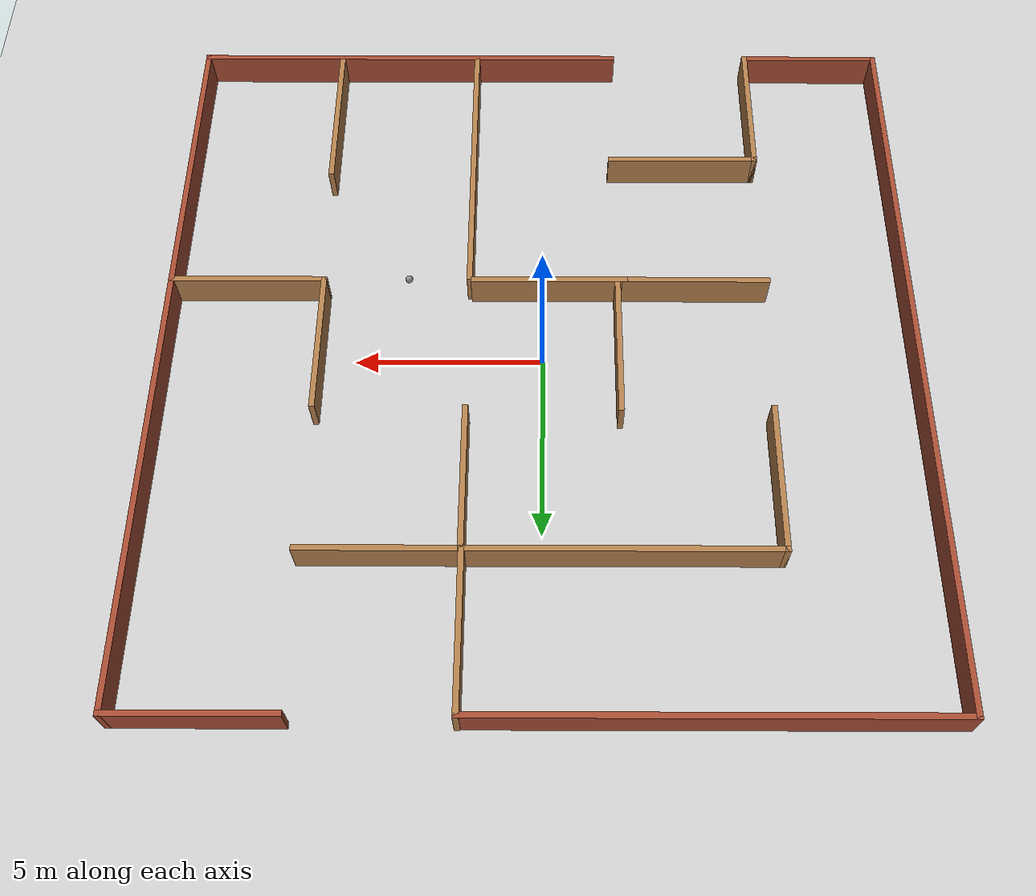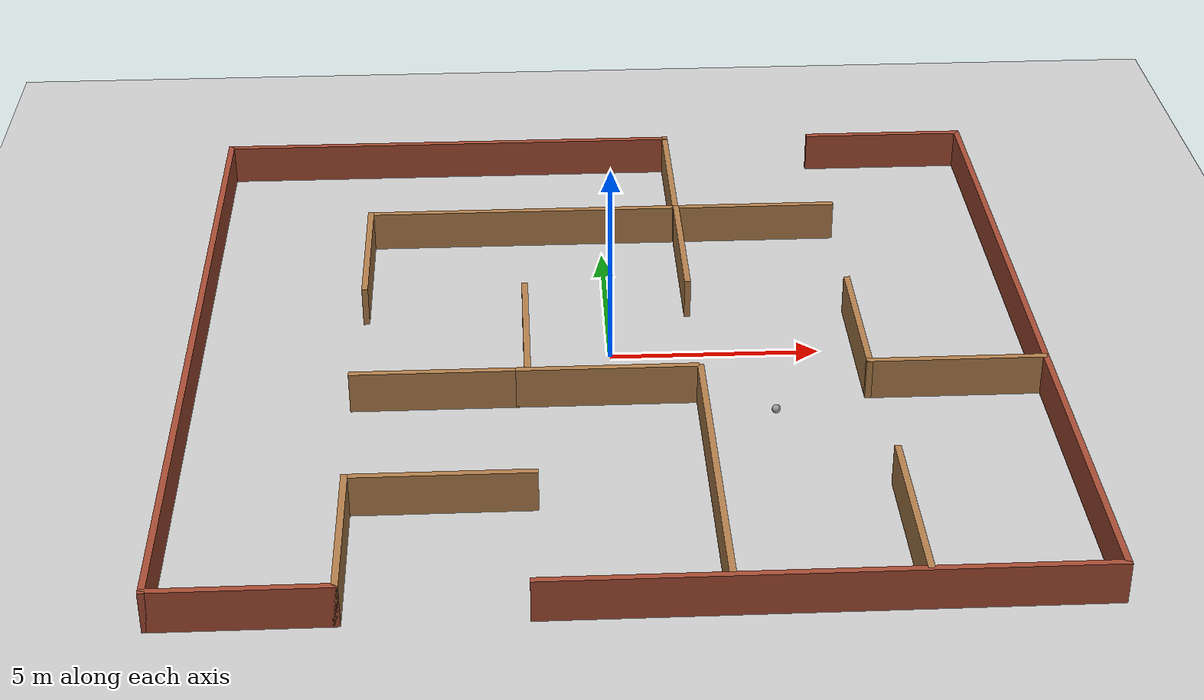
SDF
<sdf version="1.6">
 <world name="default">
  <light name="sun" type="directional">
   <pose>0 0 10 0 -0 0</pose>
   <diffuse>0.8 0.8 0.8 1</diffuse>
   <specular>0.2 0.2 0.2 1</specular>
   <attenuation>
    <range>1000</range>
    <constant>0.9</constant>
    <linear>0.01</linear>
    <quadratic>0.001</quadratic>
   </attenuation>
   <direction>-0.5 0.1 -0.9</direction>
  </light>
  <model name="ground_plane">
   <static>1</static>
   <link name="link">
    <collision name="collision">
     <geometry><plane><normal>0 0 1</normal><size>100 100</size></plane></geometry>
     <surface>
      <contact><collide_bitmask>65535</collide_bitmask></contact>
      <friction><ode><mu>100</mu><mu2>50</mu2></ode></friction>
     </surface>
    </collision>
    <visual name="visual">
     <cast_shadows>0</cast_shadows>
     <geometry><plane><normal>0 0 1</normal><size>100 100</size></plane></geometry>
     <material>
      <script><uri>file://media/materials/scripts/gazebo.material</uri><name>Gazebo/Grey</name></script>
     </material>
    </visual>
   </link>
  </model>
  <gravity>0 0 -9.8</gravity>
  <magnetic_field>6e-06 2.3e-05 -4.2e-05</magnetic_field>
  <atmosphere type="adiabatic"/>
  <physics name="default_physics" default="0" type="ode">
   <max_step_size>0.001</max_step_size>
   <real_time_factor>1</real_time_factor>
   <real_time_update_rate>1000</real_time_update_rate>
  </physics>
  <scene><ambient>0.4 0.4 0.4 1</ambient><background>0.7 0.7 0.7 1</background><shadows>1</shadows></scene>
  <audio><device>default</device></audio>
  <spherical_coordinates>
   <surface_model>EARTH_WGS84</surface_model>
   <latitude_deg>0</latitude_deg>
   <longitude_deg>0</longitude_deg>
   <elevation>0</elevation>
   <heading_deg>0</heading_deg>
  </spherical_coordinates>
  <model name="maze1">
   <pose>0.076704 -0.137319 0 0 -0 0</pose>
   <link name="Wall_100">
    <collision name="Wall_100_Collision">
     <geometry><box><size>12 0.15 1</size></box></geometry>
     <pose>0 0 0.5 0 -0 0</pose>
    </collision>
    <visual name="Wall_100_Visual">
     <pose>0 0 0.5 0 -0 0</pose>
     <geometry><box><size>12 0.15 1</size></box></geometry>
     <material>
      <script><uri>file://media/materials/scripts/gazebo.material</uri><name>Gazebo/Bricks</name></script>
      <ambient>1 1 1 1</ambient>
     </material>
     <meta><layer>0</layer></meta>
    </visual>
    <pose>-4.0495 9.9285 0 0 -0 3.14159</pose>
   </link>
   <link name="Wall_101">
    <collision name="Wall_101_Collision">
     <geometry><box><size>20 0.15 1</size></box></geometry>
     <pose>0 0 0.5 0 -0 0</pose>
    </collision>
    <visual name="Wall_101_Visual">
     <pose>0 0 0.5 0 -0 0</pose>
     <geometry><box><size>20 0.15 1</size></box></geometry>
     <material>
      <script><uri>file://media/materials/scripts/gazebo.material</uri><name>Gazebo/Bricks</name></script>
      <ambient>1 1 1 1</ambient>
     </material>
     <meta><layer>0</layer></meta>
    </visual>
    <pose>-9.9745 0.0035 0 0 -0 -1.5708</pose>
   </link>
   <link name="Wall_102">
    <collision name="Wall_102_Collision">
     <geometry><box><size>4 0.15 1</size></box></geometry>
     <pose>0 0 0.5 0 -0 0</pose>
    </collision>
    <visual name="Wall_102_Visual">
     <pose>0 0 0.5 0 -0 0</pose>
     <geometry><box><size>4 0.15 1</size></box></geometry>
     <material>
      <script><uri>file://media/materials/scripts/gazebo.material</uri><name>Gazebo/Bricks</name></script>
      <ambient>1 1 1 1</ambient>
     </material>
     <meta><layer>0</layer></meta>
    </visual>
    <pose>-8.0495 -9.9215 0 0 -0 0</pose>
   </link>
   <link name="Wall_103">
    <collision name="Wall_103_Collision">
     <geometry><box><size>4 0.15 1</size></box></geometry>
     <pose>0 0 0.5 0 -0 0</pose>
    </collision>
    <visual name="Wall_103_Visual">
     <pose>0 0 0.5 0 -0 0</pose>
     <geometry><box><size>4 0.15 1</size></box></geometry>
     <material>
      <script><uri>file://media/materials/scripts/gazebo.material</uri><name>Gazebo/Wood</name></script>
      <ambient>1 1 1 1</ambient>
     </material>
     <meta><layer>0</layer></meta>
    </visual>
    <pose>-6.1245 -7.9965 0 0 -0 1.5708</pose>
   </link>
   <link name="Wall_104">
    <collision name="Wall_104_Collision">
     <geometry><box><size>4.25 0.15 1</size></box></geometry>
     <pose>0 0 0.5 0 -0 0</pose>
    </collision>
    <visual name="Wall_104_Visual">
     <pose>0 0 0.5 0 -0 0</pose>
     <geometry><box><size>4.25 0.15 1</size></box></geometry>
     <material>
      <script><uri>file://media/materials/scripts/gazebo.material</uri><name>Gazebo/Wood</name></script>
      <ambient>1 1 1 1</ambient>
     </material>
     <meta><layer>0</layer></meta>
    </visual>
    <pose>-4.0745 -6.0715 0 0 -0 0</pose>
   </link>
   <link name="Wall_108">
    <collision name="Wall_108_Collision">
     <geometry><box><size>4 0.15 1</size></box></geometry>
     <pose>0 0 0.5 0 -0 0</pose>
    </collision>
    <visual name="Wall_108_Visual">
     <pose>0 0 0.5 0 -0 0</pose>
     <geometry><box><size>4 0.15 1</size></box></geometry>
     <material>
      <script><uri>file://media/materials/scripts/gazebo.material</uri><name>Gazebo/Wood</name></script>
      <ambient>1 1 1 1</ambient>
     </material>
     <meta><layer>0</layer></meta>
    </visual>
    <pose>-2.1065 0.1015 0 0 -0 -1.5708</pose>
   </link>
   <link name="Wall_110">
    <collision name="Wall_110_Collision">
     <geometry><box><size>8 0.15 1</size></box></geometry>
     <pose>0 0 0.5 0 -0 0</pose>
    </collision>
    <visual name="Wall_110_Visual">
     <pose>0 0 0.5 0 -0 0</pose>
     <geometry><box><size>8 0.15 1</size></box></geometry>
     <material>
      <script><uri>file://media/materials/scripts/gazebo.material</uri><name>Gazebo/Wood</name></script>
      <ambient>1 1 1 1</ambient>
     </material>
     <meta><layer>0</layer></meta>
    </visual>
    <pose>1.9005 -5.9055 0 0 -0 -1.5708</pose>
   </link>
   <link name="Wall_116">
    <collision name="Wall_116_Collision">
     <geometry><box><size>4 0.15 1</size></box></geometry>
     <pose>0 0 0.5 0 -0 0</pose>
    </collision>
    <visual name="Wall_116_Visual">
     <pose>0 0 0.5 0 -0 0</pose>
     <geometry><box><size>4 0.15 1</size></box></geometry>
     <material>
      <script><uri>file://media/materials/scripts/gazebo.material</uri><name>Gazebo/Wood</name></script>
      <ambient>1 1 1 1</ambient>
     </material>
     <meta><layer>0</layer></meta>
    </visual>
    <pose>1.9005 3.9515 0 0 -0 1.5708</pose>
   </link>
   <link name="Wall_121">
    <collision name="Wall_121_Collision">
     <geometry><box><size>4 0.15 1</size></box></geometry>
     <pose>0 0 0.5 0 -0 0</pose>
    </collision>
    <visual name="Wall_121_Visual">
     <pose>0 0 0.5 0 -0 0</pose>
     <geometry><box><size>4 0.15 1</size></box></geometry>
     <material>
      <script><uri>file://media/materials/scripts/gazebo.material</uri><name>Gazebo/Wood</name></script>
      <ambient>1 1 1 1</ambient>
     </material>
     <meta><layer>0</layer></meta>
    </visual>
    <pose>-6.0185 3.9625 0 0 -0 1.5708</pose>
   </link>
   <link name="Wall_122">
    <collision name="Wall_122_Collision">
     <geometry><box><size>8.04652 0.15 1</size></box></geometry>
     <pose>0 0 0.5 0 -0 0</pose>
    </collision>
    <visual name="Wall_122_Visual">
     <pose>0 0 0.5 0 -0 0</pose>
     <geometry><box><size>8.04652 0.15 1</size></box></geometry>
     <material>
      <script><uri>file://media/materials/scripts/gazebo.material</uri><name>Gazebo/Wood</name></script>
      <ambient>1 1 1 1</ambient>
     </material>
     <meta><layer>0</layer></meta>
    </visual>
    <pose>-2.07 5.8875 0 0 -0 0</pose>
   </link>
   <link name="Wall_123">
    <collision name="Wall_123_Collision">
     <geometry><box><size>4.20348 0.15 1</size></box></geometry>
     <pose>0 0 0.5 0 -0 0</pose>
    </collision>
    <visual name="Wall_123_Visual">
     <pose>0 0 0.5 0 -0 0</pose>
     <geometry><box><size>4.20348 0.15 1</size></box></geometry>
     <material>
      <script><uri>file://media/materials/scripts/gazebo.material</uri><name>Gazebo/Wood</name></script>
      <ambient>1 1 1 1</ambient>
     </material>
     <meta><layer>0</layer></meta>
    </visual>
    <pose>3.905 5.8875 0 0 -0 0</pose>
   </link>
   <link name="Wall_129">
    <collision name="Wall_129_Collision">
     <geometry><box><size>4 0.15 1</size></box></geometry>
     <pose>0 0 0.5 0 -0 0</pose>
    </collision>
    <visual name="Wall_129_Visual">
     <pose>0 0 0.5 0 -0 0</pose>
     <geometry><box><size>4 0.15 1</size></box></geometry>
     <material>
      <script><uri>file://media/materials/scripts/gazebo.material</uri><name>Gazebo/Wood</name></script>
      <ambient>1 1 1 1</ambient>
     </material>
     <meta><layer>0</layer></meta>
    </visual>
    <pose>-4.2335 -1.9165 0 0 -0 0</pose>
   </link>
   <link name="Wall_130">
    <collision name="Wall_130_Collision">
     <geometry><box><size>4.25 0.15 1</size></box></geometry>
     <pose>0 0 0.5 0 -0 0</pose>
    </collision>
    <visual name="Wall_130_Visual">
     <pose>0 0 0.5 0 -0 0</pose>
     <geometry><box><size>4.25 0.15 1</size></box></geometry>
     <material>
      <script><uri>file://media/materials/scripts/gazebo.material</uri><name>Gazebo/Wood</name></script>
      <ambient>1 1 1 1</ambient>
     </material>
     <meta><layer>0</layer></meta>
    </visual>
    <pose>-0.2585 -1.9165 0 0 -0 0</pose>
   </link>
   <link name="Wall_132">
    <collision name="Wall_132_Collision">
     <geometry><box><size>4.5 0.15 1</size></box></geometry>
     <pose>0 0 0.5 0 -0 0</pose>
    </collision>
    <visual name="Wall_132_Visual">
     <pose>0 0 0.5 0 -0 0</pose>
     <geometry><box><size>4.5 0.15 1</size></box></geometry>
     <material>
      <script><uri>file://media/materials/scripts/gazebo.material</uri><name>Gazebo/Wood</name></script>
      <ambient>1 1 1 1</ambient>
     </material>
     <meta><layer>0</layer></meta>
    </visual>
    <pose>5.9385 -7.7445 0 0 -0 1.5708</pose>
   </link>
   <link name="Wall_134">
    <collision name="Wall_134_Collision">
     <geometry><box><size>4.25 0.15 1</size></box></geometry>
     <pose>0 0 0.5 0 -0 0</pose>
    </collision>
    <visual name="Wall_134_Visual">
     <pose>0 0 0.5 0 -0 0</pose>
     <geometry><box><size>4.25 0.15 1</size></box></geometry>
     <material>
      <script><uri>file://media/materials/scripts/gazebo.material</uri><name>Gazebo/Wood</name></script>
      <ambient>1 1 1 1</ambient>
     </material>
     <meta><layer>0</layer></meta>
    </visual>
    <pose>7.8895 -1.9165 0 0 -0 3.14159</pose>
   </link>
   <link name="Wall_138">
    <collision name="Wall_138_Collision">
     <geometry><box><size>4.2 0.15 1</size></box></geometry>
     <pose>0 0 0.5 0 -0 0</pose>
    </collision>
    <visual name="Wall_138_Visual">
     <pose>0 0 0.5 0 -0 0</pose>
     <geometry><box><size>4.2 0.15 1</size></box></geometry>
     <material>
      <script><uri>file://media/materials/scripts/gazebo.material</uri><name>Gazebo/Wood</name></script>
      <ambient>1 1 1 1</ambient>
     </material>
     <meta><layer>0</layer></meta>
    </visual>
    <pose>1.8785 7.9125 0 0 -0 1.5708</pose>
   </link>
   <link name="Wall_142">
    <collision name="Wall_142_Collision">
     <geometry><box><size>4 0.15 1</size></box></geometry>
     <pose>0 0 0.5 0 -0 0</pose>
    </collision>
    <visual name="Wall_142_Visual">
     <pose>0 0 0.5 0 -0 0</pose>
     <geometry><box><size>4 0.15 1</size></box></geometry>
     <material>
      <script><uri>file://media/materials/scripts/gazebo.material</uri><name>Gazebo/Wood</name></script>
      <ambient>1 1 1 1</ambient>
     </material>
     <meta><layer>0</layer></meta>
    </visual>
    <pose>5.8395 0.0085 0 0 -0 1.5708</pose>
   </link>
   <link name="Wall_96">
    <collision name="Wall_96_Collision">
     <geometry><box><size>12.25 0.15 1</size></box></geometry>
     <pose>0 0 0.5 0 -0 0</pose>
    </collision>
    <visual name="Wall_96_Visual">
     <pose>0 0 0.5 0 -0 0</pose>
     <geometry><box><size>12.25 0.15 1</size></box></geometry>
     <material>
      <script><uri>file://media/materials/scripts/gazebo.material</uri><name>Gazebo/Bricks</name></script>
      <ambient>1 1 1 1</ambient>
     </material>
     <meta><layer>0</layer></meta>
    </visual>
    <pose>3.9245 -9.9375 0 0 -0 0</pose>
   </link>
   <link name="Wall_97">
    <collision name="Wall_97_Collision">
     <geometry><box><size>20 0.15 1</size></box></geometry>
     <pose>0 0 0.5 0 -0 0</pose>
    </collision>
    <visual name="Wall_97_Visual">
     <pose>0 0 0.5 0 -0 0</pose>
     <geometry><box><size>20 0.15 1</size></box></geometry>
     <material>
      <script><uri>file://media/materials/scripts/gazebo.material</uri><name>Gazebo/Bricks</name></script>
      <ambient>1 1 1 1</ambient>
     </material>
     <meta><layer>0</layer></meta>
    </visual>
    <pose>9.9745 -0.0125 0 0 -0 1.5708</pose>
   </link>
   <link name="Wall_98">
    <collision name="Wall_98_Collision">
     <geometry><box><size>4.25 0.15 1</size></box></geometry>
     <pose>0 0 0.5 0 -0 0</pose>
    </collision>
    <visual name="Wall_98_Visual">
     <pose>0 0 0.5 0 -0 0</pose>
     <geometry><box><size>4.25 0.15 1</size></box></geometry>
     <material>
      <script><uri>file://media/materials/scripts/gazebo.material</uri><name>Gazebo/Bricks</name></script>
      <ambient>1 1 1 1</ambient>
     </material>
     <meta><layer>0</layer></meta>
    </visual>
    <pose>7.9245 9.9125 0 0 -0 3.14159</pose>
   </link>
   <static>1</static>
  </model>
  <model name="my_ball">
   <link name="link_0">
    <inertial>
     <mass>1</mass>
     <inertia><ixx>0.1</ixx><ixy>0</ixy><ixz>0</ixz><iyy>0.1</iyy><iyz>0</iyz><izz>0.1</izz></inertia>
    </inertial>
    <visual name="visual">
     <geometry><sphere><radius>0.1</radius></sphere></geometry>
     <material>
      <lighting>1</lighting>
      <script><uri>file://media/materials/scripts/gazebo.material</uri><name>Gazebo/Grey</name></script>
      <shader type="vertex"><normal_map>__default__</normal_map></shader>
      <ambient>1 1 1 1</ambient>
      <diffuse>1 1 1 1</diffuse>
      <specular>1 1 1 1</specular>
      <emissive>1 1 1 1</emissive>
     </material>
    </visual>
    <collision name="collision">
     <geometry><sphere><radius>0.1</radius></sphere></geometry>
     <surface>
      <friction>
       <ode><mu>1</mu><mu2>1</mu2><fdir1>0 0 0</fdir1><slip1>0</slip1><slip2>0</slip2></ode>
       <torsional>
        <coefficient>1</coefficient>
        <patch_radius>0</patch_radius>
        <surface_radius>0</surface_radius>
        <use_patch_radius>1</use_patch_radius>
        <ode><slip>0</slip></ode>
       </torsional>
      </friction>
      <bounce><restitution_coefficient>0</restitution_coefficient><threshold>1e+06</threshold></bounce>
      <contact>
       <collide_without_contact>0</collide_without_contact>
       <collide_without_contact_bitmask>1</collide_without_contact_bitmask>
       <collide_bitmask>1</collide_bitmask>
       <ode>
        <soft_cfm>0</soft_cfm>
        <soft_erp>0.2</soft_erp>
        <kp>1e+13</kp>
        <kd>1</kd>
        <max_vel>0.01</max_vel>
        <min_depth>0</min_depth>
       </ode>
       <bullet>
        <split_impulse>1</split_impulse>
        <split_impulse_penetration_threshold>-0.01</split_impulse_penetration_threshold>
        <soft_cfm>0</soft_cfm>
        <soft_erp>0.2</soft_erp>
        <kp>1e+13</kp>
        <kd>1</kd>
       </bullet>
      </contact>
     </surface>
    </collision>
   </link>
   <static>0</static>
   <pose>3.70604 -2.64205 0.1 0 -0 0</pose>
  </model>
 </world>
</sdf>
